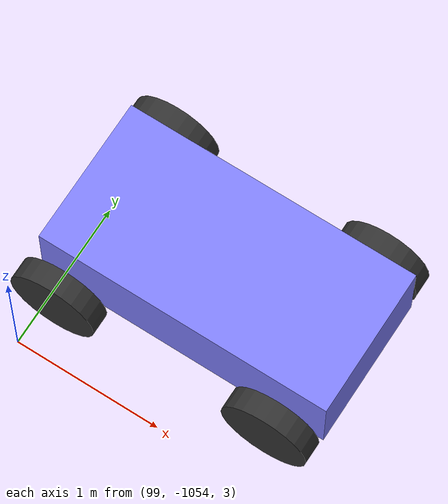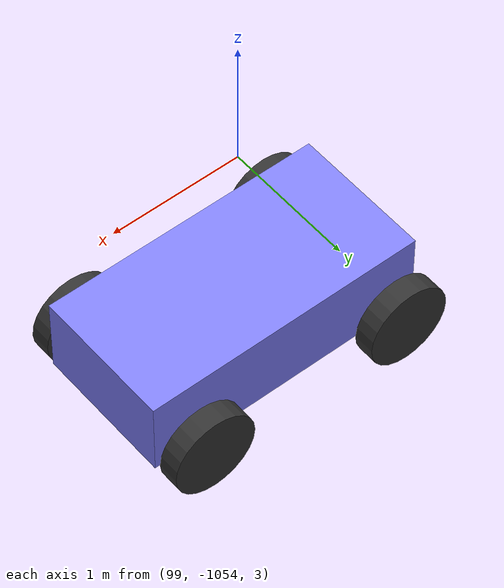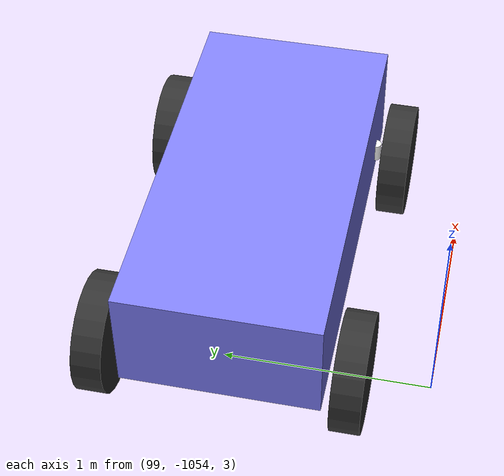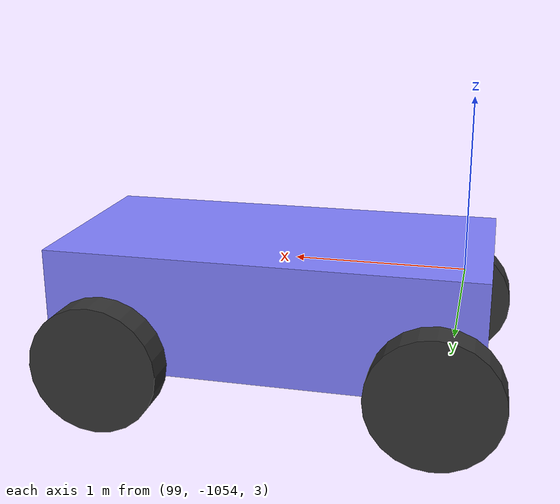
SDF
<sdf version="1.6">
 <world name="nb_park_world">
  <plugin filename="gz-sim-physics-system" name="gz::sim::systems::Physics"/>
  <plugin filename="gz-sim-user-commands-system" name="gz::sim::systems::UserCommands"/>
  <plugin filename="gz-sim-scene-broadcaster-system" name="gz::sim::systems::SceneBroadcaster"/>
  <plugin filename="gz-sim-sensors-system" name="gz::sim::systems::Sensors">
   <render_engine>ogre2</render_engine>
  </plugin>
  <plugin filename="gz-sim-imu-system" name="gz::sim::systems::Imu"/>
  <plugin filename="gz-sim-air-pressure-system" name="gz::sim::systems::AirPressure"/>
  <plugin filename="gz-sim-magnetometer-system" name="gz::sim::systems::Magnetometer"/>
  <plugin filename="gz-sim-navsat-system" name="gz::sim::systems::NavSat"/>
  <plugin filename="gz-sim-contact-system" name="gz::sim::systems::Contact"/>
  <physics name="default_physics" type="ode">
   <max_step_size>0.004</max_step_size>
   <real_time_factor>1.0</real_time_factor>
   <real_time_update_rate>250</real_time_update_rate>
  </physics>
  <spherical_coordinates>
   <surface_model>EARTH_WGS84</surface_model>
   <latitude_deg>27.377421</latitude_deg>
   <longitude_deg>-82.451841</longitude_deg>
   <elevation>0</elevation>
  </spherical_coordinates>
  <magnetic_field>6e-06 2.3e-05 -4.2e-05</magnetic_field>
  <light type="directional" name="sun">
   <pose>0 0 10 0 0 0</pose>
   <diffuse>0.8 0.8 0.8 1</diffuse>
   <specular>0.2 0.2 0.2 1</specular>
   <attenuation>
    <range>1000</range>
    <constant>0.9</constant>
    <linear>0.01</linear>
    <quadratic>0.001</quadratic>
   </attenuation>
   <direction>-0.5 0.1 -0.9</direction>
  </light>
  <scene><ambient>0.4 0.4 0.4 1</ambient><background>0.7 0.7 0.7 1</background><shadows>true</shadows></scene>
  <gravity>0 0 -9.8066</gravity>
  <model name="ground_plane">
   <static>true</static>
   <link name="link">
    <collision name="collision">
     <geometry><plane><normal>0 0 1</normal><size>2000 2000</size></plane></geometry>
     <surface><friction><ode><mu>1.0</mu><mu2>1.0</mu2></ode></friction></surface>
    </collision>
   </link>
  </model>
  <model name="ackermann_rover">
   <pose>100 -1053 3 0 0 0</pose>
   <link name="chassis">
    <pose>-0.151427 0 0.175 0 0 0</pose>
    <inertial>
     <mass>1.14395</mass>
     <inertia>
      <ixx>0.126164</ixx>
      <ixy>0</ixy>
      <ixz>0</ixz>
      <iyy>0.416519</iyy>
      <iyz>0</iyz>
      <izz>0.481014</izz>
     </inertia>
    </inertial>
    <visual name="visual">
     <geometry><box><size>2.01142 1 0.568726</size></box></geometry>
     <material>
      <ambient>0.5 0.5 1.0 1</ambient>
      <diffuse>0.5 0.5 1.0 1</diffuse>
      <specular>0.0 0.0 1.0 1</specular>
     </material>
    </visual>
    <collision name="collision"><geometry><box><size>2.01142 1 0.568726</size></box></geometry></collision>
   </link>
   <link name="front_left_wheel">
    <pose>0.554283 0.625029 -0.025 -1.5707 0 0</pose>
    <inertial>
     <mass>2</mass>
     <inertia><ixx>0.145833</ixx><ixy>0</ixy><ixz>0</ixz><iyy>0.145833</iyy><iyz>0</iyz><izz>0.125</izz></inertia>
    </inertial>
    <visual name="visual">
     <geometry><cylinder><length>0.15</length><radius>0.3</radius></cylinder></geometry>
     <material>
      <ambient>0.2 0.2 0.2 1</ambient>
      <diffuse>0.2 0.2 0.2 1</diffuse>
      <specular>0.2 0.2 0.2 1</specular>
     </material>
    </visual>
    <collision name="collision">
     <geometry><cylinder><length>0.15</length><radius>0.3</radius></cylinder></geometry>
     <surface><friction><ode><mu>1.0</mu><mu2>1.0</mu2><fdir1>0 0 1</fdir1></ode></friction></surface>
    </collision>
   </link>
   <link name="rear_left_wheel">
    <pose>-0.957138 0.625029 -0.025 -1.5707 0 0</pose>
    <inertial>
     <mass>2</mass>
     <inertia><ixx>0.145833</ixx><ixy>0</ixy><ixz>0</ixz><iyy>0.145833</iyy><iyz>0</iyz><izz>0.125</izz></inertia>
    </inertial>
    <visual name="visual">
     <geometry><cylinder><length>0.15</length><radius>0.3</radius></cylinder></geometry>
     <material>
      <ambient>0.2 0.2 0.2 1</ambient>
      <diffuse>0.2 0.2 0.2 1</diffuse>
      <specular>0.2 0.2 0.2 1</specular>
     </material>
    </visual>
    <collision name="collision">
     <geometry><cylinder><length>0.15</length><radius>0.3</radius></cylinder></geometry>
     <surface><friction><ode><mu>1.0</mu><mu2>1.0</mu2><fdir1>0 0 1</fdir1></ode></friction></surface>
    </collision>
   </link>
   <link name="front_right_wheel">
    <pose>0.554282 -0.625029 -0.025 -1.5707 0 0</pose>
    <inertial>
     <mass>2</mass>
     <inertia><ixx>0.145833</ixx><ixy>0</ixy><ixz>0</ixz><iyy>0.145833</iyy><iyz>0</iyz><izz>0.125</izz></inertia>
    </inertial>
    <visual name="visual">
     <geometry><cylinder><length>0.15</length><radius>0.3</radius></cylinder></geometry>
     <material>
      <ambient>0.2 0.2 0.2 1</ambient>
      <diffuse>0.2 0.2 0.2 1</diffuse>
      <specular>0.2 0.2 0.2 1</specular>
     </material>
    </visual>
    <collision name="collision">
     <geometry><cylinder><length>0.15</length><radius>0.3</radius></cylinder></geometry>
     <surface><friction><ode><mu>1.0</mu><mu2>1.0</mu2><fdir1>0 0 1</fdir1></ode></friction></surface>
    </collision>
   </link>
   <link name="rear_right_wheel">
    <pose>-0.957138 -0.625029 -0.025 -1.5707 0 0</pose>
    <inertial>
     <mass>2</mass>
     <inertia><ixx>0.145833</ixx><ixy>0</ixy><ixz>0</ixz><iyy>0.145833</iyy><iyz>0</iyz><izz>0.125</izz></inertia>
    </inertial>
    <visual name="visual">
     <geometry><cylinder><length>0.15</length><radius>0.3</radius></cylinder></geometry>
     <material>
      <ambient>0.2 0.2 0.2 1</ambient>
      <diffuse>0.2 0.2 0.2 1</diffuse>
      <specular>0.2 0.2 0.2 1</specular>
     </material>
    </visual>
    <collision name="collision">
     <geometry><cylinder><length>0.15</length><radius>0.3</radius></cylinder></geometry>
     <surface><friction><ode><mu>1.0</mu><mu2>1.0</mu2><fdir1>0 0 1</fdir1></ode></friction></surface>
    </collision>
   </link>
   <link name="front_left_wheel_steering_link">
    <pose>0.554283 0.5 0.02 0 0 0</pose>
    <inertial><mass>0.5</mass><inertia><ixx>0.0153</ixx><iyy>0.025</iyy><izz>0.0153</izz></inertia></inertial>
    <visual name="visual">
     <geometry><cylinder><length>0.1</length><radius>0.03</radius></cylinder></geometry>
     <material><ambient>1 1 1 1</ambient><diffuse>1 1 1 1</diffuse></material>
    </visual>
   </link>
   <link name="front_right_wheel_steering_link">
    <pose>0.554283 -0.5 0.02 0 0 0</pose>
    <inertial><mass>0.5</mass><inertia><ixx>0.0153</ixx><iyy>0.025</iyy><izz>0.0153</izz></inertia></inertial>
    <visual name="visual">
     <geometry><cylinder><length>0.1</length><radius>0.03</radius></cylinder></geometry>
     <material><ambient>1 1 1 1</ambient><diffuse>1 1 1 1</diffuse></material>
    </visual>
   </link>
   <joint name="front_left_wheel_steering_joint" type="revolute">
    <parent>chassis</parent>
    <child>front_left_wheel_steering_link</child>
    <axis>
     <xyz>0 0 1</xyz>
     <limit><lower>-0.6</lower><upper>0.6</upper><velocity>1.0</velocity><effort>25</effort></limit>
    </axis>
   </joint>
   <joint name="front_right_wheel_steering_joint" type="revolute">
    <parent>chassis</parent>
    <child>front_right_wheel_steering_link</child>
    <axis>
     <xyz>0 0 1</xyz>
     <limit><lower>-0.6</lower><upper>0.6</upper><velocity>1.0</velocity><effort>25</effort></limit>
    </axis>
   </joint>
   <joint name="front_left_wheel_joint" type="revolute">
    <parent>front_left_wheel_steering_link</parent>
    <child>front_left_wheel</child>
    <axis><xyz>0 0 1</xyz><limit><lower>-1.79769e+308</lower><upper>1.79769e+308</upper></limit></axis>
   </joint>
   <joint name="front_right_wheel_joint" type="revolute">
    <parent>front_right_wheel_steering_link</parent>
    <child>front_right_wheel</child>
    <axis><xyz>0 0 1</xyz><limit><lower>-1.79769e+308</lower><upper>1.79769e+308</upper></limit></axis>
   </joint>
   <joint name="rear_left_wheel_joint" type="revolute">
    <parent>chassis</parent>
    <child>rear_left_wheel</child>
    <axis><xyz>0 0 1</xyz><limit><lower>-1.79769e+308</lower><upper>1.79769e+308</upper></limit></axis>
   </joint>
   <joint name="rear_right_wheel_joint" type="revolute">
    <parent>chassis</parent>
    <child>rear_right_wheel</child>
    <axis><xyz>0 0 1</xyz><limit><lower>-1.79769e+308</lower><upper>1.79769e+308</upper></limit></axis>
   </joint>
   <plugin filename="gz-sim-ackermann-steering-system" name="gz::sim::systems::AckermannSteering">
    <left_joint>front_left_wheel_joint</left_joint>
    <left_joint>rear_left_wheel_joint</left_joint>
    <right_joint>front_right_wheel_joint</right_joint>
    <right_joint>rear_right_wheel_joint</right_joint>
    <left_steering_joint>front_left_wheel_steering_joint</left_steering_joint>
    <right_steering_joint>front_right_wheel_steering_joint</right_steering_joint>
    <kingpin_width>1.0</kingpin_width>
    <steering_limit>0.5</steering_limit>
    <wheel_base>1.5</wheel_base>
    <wheel_separation>1.25</wheel_separation>
    <wheel_radius>0.3</wheel_radius>
    <min_velocity>-2</min_velocity>
    <max_velocity>2</max_velocity>
    <min_acceleration>-3</min_acceleration>
    <max_acceleration>3</max_acceleration>
    <topic>cmd_vel</topic>
    <odom_topic>odom</odom_topic>
    <frame_id>odom</frame_id>
    <child_frame_id>chassis</child_frame_id>
   </plugin>
   <plugin filename="gz-sim-joint-state-publisher-system" name="gz::sim::systems::JointStatePublisher"/>
  </model>
 </world>
</sdf>
